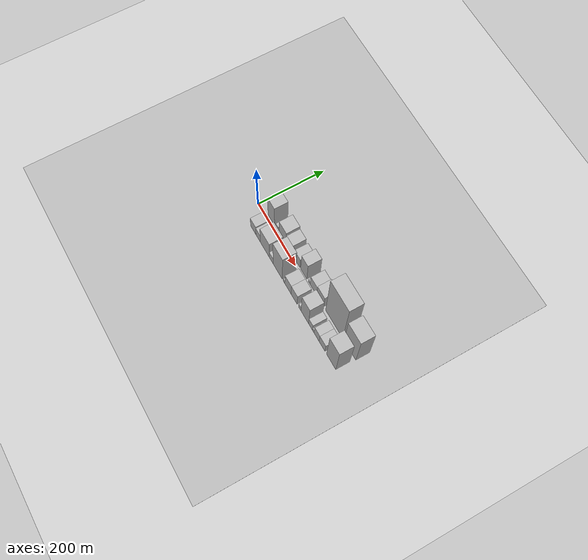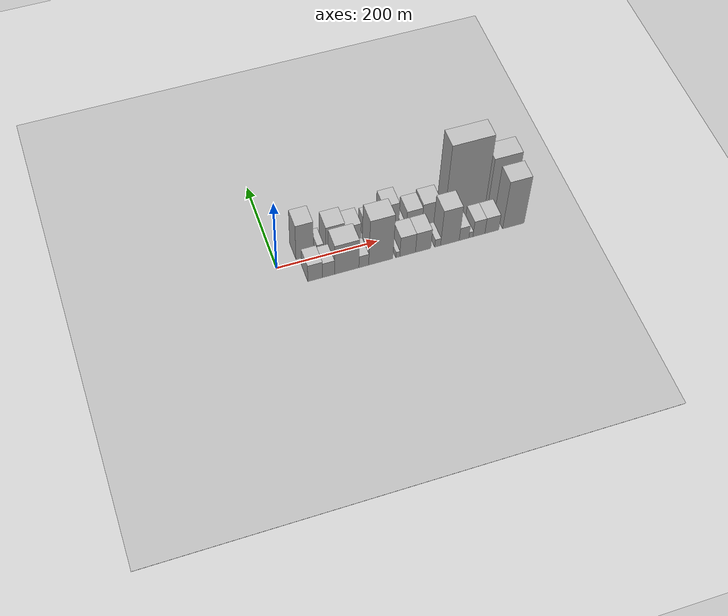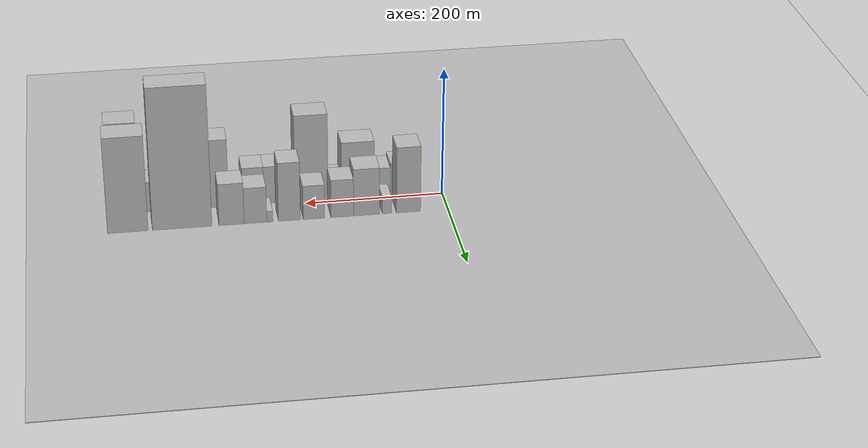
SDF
<?xml version="1.0" encoding="utf-8"?>

<sdf version="1.6">

   <world name="default">

      <gui fullscreen="0">

         <camera name="user_camera">

            <pose>-15 0 4.57585 0 0 0</pose>

            <view_controller>orbit</view_controller>

         </camera>

      </gui>

      <scene>

         <sky>

           <clouds>

             <speed>12</speed>

           </clouds>

         </sky>

         <ambient>0.4 0.4 0.4 1</ambient>

         <background>0.7 0.7 0.7 1</background>

         <shadows>1</shadows>

      </scene>

      <gravity>0 0 -9.8066</gravity>

      <magnetic_field>6e-06 2.3e-05 -4.2e-05</magnetic_field>

      <physics default="0" name="default_physics" type="ode">

         <ode>

            <solver>

               <type>quick</type>

               <iters>10</iters>

               <sor>1.0</sor>

               <use_dynamic_moi_rescaling>0</use_dynamic_moi_rescaling>

            </solver>

            <constraints>

               <cfm>0</cfm>

               <erp>0.2</erp>

               <contact_max_correcting_vel>100</contact_max_correcting_vel>

               <contact_surface_layer>0.001</contact_surface_layer>

            </constraints>

         </ode>

         <max_step_size>0.004</max_step_size>

         <real_time_factor>1</real_time_factor>

         <real_time_update_rate>250</real_time_update_rate>

      </physics>

      <light name="sun" type="directional">

         <cast_shadows>1</cast_shadows>

         <pose>0 0 10 0 0 0</pose>

         <diffuse>0.8 0.8 0.8 1</diffuse>

         <specular>0.2 0.2 0.2 1</specular>

         <attenuation>

            <range>1000</range>

            <constant>0.9</constant>

            <linear>0.01</linear>

            <quadratic>0.001</quadratic>

         </attenuation>

         <direction>-0.5 0.1 -0.9</direction>

      </light>

      <include>

         <name>ground_plane_1</name>

         <uri>model://HANNAS_ground_plane</uri>

         <pose>0 0 0  0 0 0</pose>

      </include>

      <include>

         <name>ground_plane_2</name>

         <uri>model://HANNAS_ground_plane</uri>

         <pose>100 0 0  0 0 0</pose>

      </include>

      <model name="building_1">

         <static>1</static>

         <pose frame="">57.4050 27.5000 0 0.000000 0.000000 1.570796</pose>

         <link name="link">

            <pose frame="">0 0 52.50 0 0 0</pose>

            <collision name="collision">

               <geometry>

                  <box>

                     <size>40.0000 34.8099 105.0000</size>

                  </box>

               </geometry>

               <max_contacts>10</max_contacts>

               <surface>

                  <contact>

                     <ode/>

                  </contact>

                  <bounce/>

                  <friction>

                     <torsional>

                        <ode/>

                     </torsional>

                     <ode/>

                  </friction>

               </surface>

            </collision>

            <visual name="visual">

               <cast_shadows>0</cast_shadows>

               <geometry>

                  <box>

                     <size>40.0000 34.8099 105.0000</size>

                  </box>

               </geometry>

               <material>

                  <script>

                     <uri>model://HANNAS_wall/materials/scripts</uri>

                     <uri>model://HANNAS_wall/materials/textures</uri>

                     <name>vrc/HANNAS_wall</name>

                  </script>

               </material>

            </visual>

            <self_collide>0</self_collide>

            <enable_wind>0</enable_wind>

            <kinematic>0</kinematic>

         </link>

      </model>

      <model name="building_2">

         <static>1</static>

         <pose frame="">88.4665 27.5000 0 0.000000 0.000000 1.570796</pose>

         <link name="link">

            <pose frame="">0 0 13.50 0 0 0</pose>

            <collision name="collision">

               <geometry>

                  <box>

                     <size>40.0000 13.3131 27.0000</size>

                  </box>

               </geometry>

               <max_contacts>10</max_contacts>

               <surface>

                  <contact>

                     <ode/>

                  </contact>

                  <bounce/>

                  <friction>

                     <torsional>

                        <ode/>

                     </torsional>

                     <ode/>

                  </friction>

               </surface>

            </collision>

            <visual name="visual">

               <cast_shadows>0</cast_shadows>

               <geometry>

                  <box>

                     <size>40.0000 13.3131 27.0000</size>

                  </box>

               </geometry>

               <material>

                  <script>

                     <uri>model://HANNAS_wall/materials/scripts</uri>

                     <uri>model://HANNAS_wall/materials/textures</uri>

                     <name>vrc/HANNAS_wall</name>

                  </script>

               </material>

            </visual>

            <self_collide>0</self_collide>

            <enable_wind>0</enable_wind>

            <kinematic>0</kinematic>

         </link>

      </model>

      <model name="building_3">

         <static>1</static>

         <pose frame="">118.0067 27.5000 0 0.000000 0.000000 1.570796</pose>

         <link name="link">

            <pose frame="">0 0 37.50 0 0 0</pose>

            <collision name="collision">

               <geometry>

                  <box>

                     <size>40.0000 37.7672 75.0000</size>

                  </box>

               </geometry>

               <max_contacts>10</max_contacts>

               <surface>

                  <contact>

                     <ode/>

                  </contact>

                  <bounce/>

                  <friction>

                     <torsional>

                        <ode/>

                     </torsional>

                     <ode/>

                  </friction>

               </surface>

            </collision>

            <visual name="visual">

               <cast_shadows>0</cast_shadows>

               <geometry>

                  <box>

                     <size>40.0000 37.7672 75.0000</size>

                  </box>

               </geometry>

               <material>

                  <script>

                     <uri>model://HANNAS_wall/materials/scripts</uri>

                     <uri>model://HANNAS_wall/materials/textures</uri>

                     <name>vrc/HANNAS_wall</name>

                  </script>

               </material>

            </visual>

            <self_collide>0</self_collide>

            <enable_wind>0</enable_wind>

            <kinematic>0</kinematic>

         </link>

      </model>

      <model name="building_4">

         <static>1</static>

         <pose frame="">153.1017 27.5000 0 0.000000 0.000000 1.570796</pose>

         <link name="link">

            <pose frame="">0 0 30.00 0 0 0</pose>

            <collision name="collision">

               <geometry>

                  <box>

                     <size>40.0000 32.4228 60.0000</size>

                  </box>

               </geometry>

               <max_contacts>10</max_contacts>

               <surface>

                  <contact>

                     <ode/>

                  </contact>

                  <bounce/>

                  <friction>

                     <torsional>

                        <ode/>

                     </torsional>

                     <ode/>

                  </friction>

               </surface>

            </collision>

            <visual name="visual">

               <cast_shadows>0</cast_shadows>

               <geometry>

                  <box>

                     <size>40.0000 32.4228 60.0000</size>

                  </box>

               </geometry>

               <material>

                  <script>

                     <uri>model://HANNAS_wall/materials/scripts</uri>

                     <uri>model://HANNAS_wall/materials/textures</uri>

                     <name>vrc/HANNAS_wall</name>

                  </script>

               </material>

            </visual>

            <self_collide>0</self_collide>

            <enable_wind>0</enable_wind>

            <kinematic>0</kinematic>

         </link>

      </model>

      <model name="building_5">

         <static>1</static>

         <pose frame="">193.7744 27.5000 0 0.000000 0.000000 1.570796</pose>

         <link name="link">

            <pose frame="">0 0 27.00 0 0 0</pose>

            <collision name="collision">

               <geometry>

                  <box>

                     <size>40.0000 30.9227 54.0000</size>

                  </box>

               </geometry>

               <max_contacts>10</max_contacts>

               <surface>

                  <contact>

                     <ode/>

                  </contact>

                  <bounce/>

                  <friction>

                     <torsional>

                        <ode/>

                     </torsional>

                     <ode/>

                  </friction>

               </surface>

            </collision>

            <visual name="visual">

               <cast_shadows>0</cast_shadows>

               <geometry>

                  <box>

                     <size>40.0000 30.9227 54.0000</size>

                  </box>

               </geometry>

               <material>

                  <script>

                     <uri>model://HANNAS_wall/materials/scripts</uri>

                     <uri>model://HANNAS_wall/materials/textures</uri>

                     <name>vrc/HANNAS_wall</name>

                  </script>

               </material>

            </visual>

            <self_collide>0</self_collide>

            <enable_wind>0</enable_wind>

            <kinematic>0</kinematic>

         </link>

      </model>

      <model name="building_6">

         <static>1</static>

         <pose frame="">228.9866 27.5000 0 0.000000 0.000000 1.570796</pose>

         <link name="link">

            <pose frame="">0 0 46.50 0 0 0</pose>

            <collision name="collision">

               <geometry>

                  <box>

                     <size>40.0000 31.5016 93.0000</size>

                  </box>

               </geometry>

               <max_contacts>10</max_contacts>

               <surface>

                  <contact>

                     <ode/>

                  </contact>

                  <bounce/>

                  <friction>

                     <torsional>

                        <ode/>

                     </torsional>

                     <ode/>

                  </friction>

               </surface>

            </collision>

            <visual name="visual">

               <cast_shadows>0</cast_shadows>

               <geometry>

                  <box>

                     <size>40.0000 31.5016 93.0000</size>

                  </box>

               </geometry>

               <material>

                  <script>

                     <uri>model://HANNAS_wall/materials/scripts</uri>

                     <uri>model://HANNAS_wall/materials/textures</uri>

                     <name>vrc/HANNAS_wall</name>

                  </script>

               </material>

            </visual>

            <self_collide>0</self_collide>

            <enable_wind>0</enable_wind>

            <kinematic>0</kinematic>

         </link>

      </model>

      <model name="building_7">

         <static>1</static>

         <pose frame="">257.1111 27.5000 0 0.000000 0.000000 1.570796</pose>

         <link name="link">

            <pose frame="">0 0 9.00 0 0 0</pose>

            <collision name="collision">

               <geometry>

                  <box>

                     <size>40.0000 8.7476 18.0000</size>

                  </box>

               </geometry>

               <max_contacts>10</max_contacts>

               <surface>

                  <contact>

                     <ode/>

                  </contact>

                  <bounce/>

                  <friction>

                     <torsional>

                        <ode/>

                     </torsional>

                     <ode/>

                  </friction>

               </surface>

            </collision>

            <visual name="visual">

               <cast_shadows>0</cast_shadows>

               <geometry>

                  <box>

                     <size>40.0000 8.7476 18.0000</size>

                  </box>

               </geometry>

               <material>

                  <script>

                     <uri>model://HANNAS_wall/materials/scripts</uri>

                     <uri>model://HANNAS_wall/materials/textures</uri>

                     <name>vrc/HANNAS_wall</name>

                  </script>

               </material>

            </visual>

            <self_collide>0</self_collide>

            <enable_wind>0</enable_wind>

            <kinematic>0</kinematic>

         </link>

      </model>

      <model name="building_8">

         <static>1</static>

         <pose frame="">277.5627 27.5000 0 0.000000 0.000000 1.570796</pose>

         <link name="link">

            <pose frame="">0 0 28.50 0 0 0</pose>

            <collision name="collision">

               <geometry>

                  <box>

                     <size>40.0000 32.1554 57.0000</size>

                  </box>

               </geometry>

               <max_contacts>10</max_contacts>

               <surface>

                  <contact>

                     <ode/>

                  </contact>

                  <bounce/>

                  <friction>

                     <torsional>

                        <ode/>

                     </torsional>

                     <ode/>

                  </friction>

               </surface>

            </collision>

            <visual name="visual">

               <cast_shadows>0</cast_shadows>

               <geometry>

                  <box>

                     <size>40.0000 32.1554 57.0000</size>

                  </box>

               </geometry>

               <material>

                  <script>

                     <uri>model://HANNAS_wall/materials/scripts</uri>

                     <uri>model://HANNAS_wall/materials/textures</uri>

                     <name>vrc/HANNAS_wall</name>

                  </script>

               </material>

            </visual>

            <self_collide>0</self_collide>

            <enable_wind>0</enable_wind>

            <kinematic>0</kinematic>

         </link>

      </model>

      <model name="building_9">

         <static>1</static>

         <pose frame="">311.5244 27.5000 0 0.000000 0.000000 1.570796</pose>

         <link name="link">

            <pose frame="">0 0 33.00 0 0 0</pose>

            <collision name="collision">

               <geometry>

                  <box>

                     <size>40.0000 35.7680 66.0000</size>

                  </box>

               </geometry>

               <max_contacts>10</max_contacts>

               <surface>

                  <contact>

                     <ode/>

                  </contact>

                  <bounce/>

                  <friction>

                     <torsional>

                        <ode/>

                     </torsional>

                     <ode/>

                  </friction>

               </surface>

            </collision>

            <visual name="visual">

               <cast_shadows>0</cast_shadows>

               <geometry>

                  <box>

                     <size>40.0000 35.7680 66.0000</size>

                  </box>

               </geometry>

               <material>

                  <script>

                     <uri>model://HANNAS_wall/materials/scripts</uri>

                     <uri>model://HANNAS_wall/materials/textures</uri>

                     <name>vrc/HANNAS_wall</name>

                  </script>

               </material>

            </visual>

            <self_collide>0</self_collide>

            <enable_wind>0</enable_wind>

            <kinematic>0</kinematic>

         </link>

      </model>

      <model name="building_10">

         <static>1</static>

         <pose frame="">381.4530 27.5000 0 0.000000 0.000000 1.570796</pose>

         <link name="link">

            <pose frame="">0 0 111.00 0 0 0</pose>

            <collision name="collision">

               <geometry>

                  <box>

                     <size>40.0000 84.0892 222.0000</size>

                  </box>

               </geometry>

               <max_contacts>10</max_contacts>

               <surface>

                  <contact>

                     <ode/>

                  </contact>

                  <bounce/>

                  <friction>

                     <torsional>

                        <ode/>

                     </torsional>

                     <ode/>

                  </friction>

               </surface>

            </collision>

            <visual name="visual">

               <cast_shadows>0</cast_shadows>

               <geometry>

                  <box>

                     <size>40.0000 84.0892 222.0000</size>

                  </box>

               </geometry>

               <material>

                  <script>

                     <uri>model://HANNAS_wall/materials/scripts</uri>

                     <uri>model://HANNAS_wall/materials/textures</uri>

                     <name>vrc/HANNAS_wall</name>

                  </script>

               </material>

            </visual>

            <self_collide>0</self_collide>

            <enable_wind>0</enable_wind>

            <kinematic>0</kinematic>

         </link>

      </model>

      <model name="building_11">

         <static>1</static>

         <pose frame="">457.9591 27.5000 0 0.000000 0.000000 1.570796</pose>

         <link name="link">

            <pose frame="">0 0 75.00 0 0 0</pose>

            <collision name="collision">

               <geometry>

                  <box>

                     <size>40.0000 56.9230 150.0000</size>

                  </box>

               </geometry>

               <max_contacts>10</max_contacts>

               <surface>

                  <contact>

                     <ode/>

                  </contact>

                  <bounce/>

                  <friction>

                     <torsional>

                        <ode/>

                     </torsional>

                     <ode/>

                  </friction>

               </surface>

            </collision>

            <visual name="visual">

               <cast_shadows>0</cast_shadows>

               <geometry>

                  <box>

                     <size>40.0000 56.9230 150.0000</size>

                  </box>

               </geometry>

               <material>

                  <script>

                     <uri>model://HANNAS_wall/materials/scripts</uri>

                     <uri>model://HANNAS_wall/materials/textures</uri>

                     <name>vrc/HANNAS_wall</name>

                  </script>

               </material>

            </visual>

            <self_collide>0</self_collide>

            <enable_wind>0</enable_wind>

            <kinematic>0</kinematic>

         </link>

      </model>

      <model name="building_12">

         <static>1</static>

         <pose frame="">60.5892 -27.5000 0 0.000000 0.000000 1.570796</pose>

         <link name="link">

            <pose frame="">0 0 25.50 0 0 0</pose>

            <collision name="collision">

               <geometry>

                  <box>

                     <size>40.0000 29.1784 51.0000</size>

                  </box>

               </geometry>

               <max_contacts>10</max_contacts>

               <surface>

                  <contact>

                     <ode/>

                  </contact>

                  <bounce/>

                  <friction>

                     <torsional>

                        <ode/>

                     </torsional>

                     <ode/>

                  </friction>

               </surface>

            </collision>

            <visual name="visual">

               <cast_shadows>0</cast_shadows>

               <geometry>

                  <box>

                     <size>40.0000 29.1784 51.0000</size>

                  </box>

               </geometry>

               <material>

                  <script>

                     <uri>model://HANNAS_wall/materials/scripts</uri>

                     <uri>model://HANNAS_wall/materials/textures</uri>

                     <name>vrc/HANNAS_wall</name>

                  </script>

               </material>

            </visual>

            <self_collide>0</self_collide>

            <enable_wind>0</enable_wind>

            <kinematic>0</kinematic>

         </link>

      </model>

      <model name="building_13">

         <static>1</static>

         <pose frame="">86.9274 -27.5000 0 0.000000 0.000000 1.570796</pose>

         <link name="link">

            <pose frame="">0 0 22.50 0 0 0</pose>

            <collision name="collision">

               <geometry>

                  <box>

                     <size>40.0000 23.4980 45.0000</size>

                  </box>

               </geometry>

               <max_contacts>10</max_contacts>

               <surface>

                  <contact>

                     <ode/>

                  </contact>

                  <bounce/>

                  <friction>

                     <torsional>

                        <ode/>

                     </torsional>

                     <ode/>

                  </friction>

               </surface>

            </collision>

            <visual name="visual">

               <cast_shadows>0</cast_shadows>

               <geometry>

                  <box>

                     <size>40.0000 23.4980 45.0000</size>

                  </box>

               </geometry>

               <material>

                  <script>

                     <uri>model://HANNAS_wall/materials/scripts</uri>

                     <uri>model://HANNAS_wall/materials/textures</uri>

                     <name>vrc/HANNAS_wall</name>

                  </script>

               </material>

            </visual>

            <self_collide>0</self_collide>

            <enable_wind>0</enable_wind>

            <kinematic>0</kinematic>

         </link>

      </model>

      <model name="building_14">

         <static>1</static>

         <pose frame="">122.7340 -27.5000 0 0.000000 0.000000 1.570796</pose>

         <link name="link">

            <pose frame="">0 0 45.00 0 0 0</pose>

            <collision name="collision">

               <geometry>

                  <box>

                     <size>40.0000 48.1151 90.0000</size>

                  </box>

               </geometry>

               <max_contacts>10</max_contacts>

               <surface>

                  <contact>

                     <ode/>

                  </contact>

                  <bounce/>

                  <friction>

                     <torsional>

                        <ode/>

                     </torsional>

                     <ode/>

                  </friction>

               </surface>

            </collision>

            <visual name="visual">

               <cast_shadows>0</cast_shadows>

               <geometry>

                  <box>

                     <size>40.0000 48.1151 90.0000</size>

                  </box>

               </geometry>

               <material>

                  <script>

                     <uri>model://HANNAS_wall/materials/scripts</uri>

                     <uri>model://HANNAS_wall/materials/textures</uri>

                     <name>vrc/HANNAS_wall</name>

                  </script>

               </material>

            </visual>

            <self_collide>0</self_collide>

            <enable_wind>0</enable_wind>

            <kinematic>0</kinematic>

         </link>

      </model>

      <model name="building_15">

         <static>1</static>

         <pose frame="">156.5684 -27.5000 0 0.000000 0.000000 1.570796</pose>

         <link name="link">

            <pose frame="">0 0 18.00 0 0 0</pose>

            <collision name="collision">

               <geometry>

                  <box>

                     <size>40.0000 19.5539 36.0000</size>

                  </box>

               </geometry>

               <max_contacts>10</max_contacts>

               <surface>

                  <contact>

                     <ode/>

                  </contact>

                  <bounce/>

                  <friction>

                     <torsional>

                        <ode/>

                     </torsional>

                     <ode/>

                  </friction>

               </surface>

            </collision>

            <visual name="visual">

               <cast_shadows>0</cast_shadows>

               <geometry>

                  <box>

                     <size>40.0000 19.5539 36.0000</size>

                  </box>

               </geometry>

               <material>

                  <script>

                     <uri>model://HANNAS_wall/materials/scripts</uri>

                     <uri>model://HANNAS_wall/materials/textures</uri>

                     <name>vrc/HANNAS_wall</name>

                  </script>

               </material>

            </visual>

            <self_collide>0</self_collide>

            <enable_wind>0</enable_wind>

            <kinematic>0</kinematic>

         </link>

      </model>

      <model name="building_16">

         <static>1</static>

         <pose frame="">190.4565 -27.5000 0 0.000000 0.000000 1.570796</pose>

         <link name="link">

            <pose frame="">0 0 69.00 0 0 0</pose>

            <collision name="collision">

               <geometry>

                  <box>

                     <size>40.0000 48.2222 138.0000</size>

                  </box>

               </geometry>

               <max_contacts>10</max_contacts>

               <surface>

                  <contact>

                     <ode/>

                  </contact>

                  <bounce/>

                  <friction>

                     <torsional>

                        <ode/>

                     </torsional>

                     <ode/>

                  </friction>

               </surface>

            </collision>

            <visual name="visual">

               <cast_shadows>0</cast_shadows>

               <geometry>

                  <box>

                     <size>40.0000 48.2222 138.0000</size>

                  </box>

               </geometry>

               <material>

                  <script>

                     <uri>model://HANNAS_wall/materials/scripts</uri>

                     <uri>model://HANNAS_wall/materials/textures</uri>

                     <name>vrc/HANNAS_wall</name>

                  </script>

               </material>

            </visual>

            <self_collide>0</self_collide>

            <enable_wind>0</enable_wind>

            <kinematic>0</kinematic>

         </link>

      </model>

      <model name="building_17">

         <static>1</static>

         <pose frame="">224.4831 -27.5000 0 0.000000 0.000000 1.570796</pose>

         <link name="link">

            <pose frame="">0 0 9.00 0 0 0</pose>

            <collision name="collision">

               <geometry>

                  <box>

                     <size>40.0000 7.8309 18.0000</size>

                  </box>

               </geometry>

               <max_contacts>10</max_contacts>

               <surface>

                  <contact>

                     <ode/>

                  </contact>

                  <bounce/>

                  <friction>

                     <torsional>

                        <ode/>

                     </torsional>

                     <ode/>

                  </friction>

               </surface>

            </collision>

            <visual name="visual">

               <cast_shadows>0</cast_shadows>

               <geometry>

                  <box>

                     <size>40.0000 7.8309 18.0000</size>

                  </box>

               </geometry>

               <material>

                  <script>

                     <uri>model://HANNAS_wall/materials/scripts</uri>

                     <uri>model://HANNAS_wall/materials/textures</uri>

                     <name>vrc/HANNAS_wall</name>

                  </script>

               </material>

            </visual>

            <self_collide>0</self_collide>

            <enable_wind>0</enable_wind>

            <kinematic>0</kinematic>

         </link>

      </model>

      <model name="building_18">

         <static>1</static>

         <pose frame="">244.2484 -27.5000 0 0.000000 0.000000 1.570796</pose>

         <link name="link">

            <pose frame="">0 0 30.00 0 0 0</pose>

            <collision name="collision">

               <geometry>

                  <box>

                     <size>40.0000 31.6999 60.0000</size>

                  </box>

               </geometry>

               <max_contacts>10</max_contacts>

               <surface>

                  <contact>

                     <ode/>

                  </contact>

                  <bounce/>

                  <friction>

                     <torsional>

                        <ode/>

                     </torsional>

                     <ode/>

                  </friction>

               </surface>

            </collision>

            <visual name="visual">

               <cast_shadows>0</cast_shadows>

               <geometry>

                  <box>

                     <size>40.0000 31.6999 60.0000</size>

                  </box>

               </geometry>

               <material>

                  <script>

                     <uri>model://HANNAS_wall/materials/scripts</uri>

                     <uri>model://HANNAS_wall/materials/textures</uri>

                     <name>vrc/HANNAS_wall</name>

                  </script>

               </material>

            </visual>

            <self_collide>0</self_collide>

            <enable_wind>0</enable_wind>

            <kinematic>0</kinematic>

         </link>

      </model>

      <model name="building_19">

         <static>1</static>

         <pose frame="">275.6434 -27.5000 0 0.000000 0.000000 1.570796</pose>

         <link name="link">

            <pose frame="">0 0 30.00 0 0 0</pose>

            <collision name="collision">

               <geometry>

                  <box>

                     <size>40.0000 31.0900 60.0000</size>

                  </box>

               </geometry>

               <max_contacts>10</max_contacts>

               <surface>

                  <contact>

                     <ode/>

                  </contact>

                  <bounce/>

                  <friction>

                     <torsional>

                        <ode/>

                     </torsional>

                     <ode/>

                  </friction>

               </surface>

            </collision>

            <visual name="visual">

               <cast_shadows>0</cast_shadows>

               <geometry>

                  <box>

                     <size>40.0000 31.0900 60.0000</size>

                  </box>

               </geometry>

               <material>

                  <script>

                     <uri>model://HANNAS_wall/materials/scripts</uri>

                     <uri>model://HANNAS_wall/materials/textures</uri>

                     <name>vrc/HANNAS_wall</name>

                  </script>

               </material>

            </visual>

            <self_collide>0</self_collide>

            <enable_wind>0</enable_wind>

            <kinematic>0</kinematic>

         </link>

      </model>

      <model name="building_20">

         <static>1</static>

         <pose frame="">305.0550 -27.5000 0 0.000000 0.000000 1.570796</pose>

         <link name="link">

            <pose frame="">0 0 12.00 0 0 0</pose>

            <collision name="collision">

               <geometry>

                  <box>

                     <size>40.0000 11.7334 24.0000</size>

                  </box>

               </geometry>

               <max_contacts>10</max_contacts>

               <surface>

                  <contact>

                     <ode/>

                  </contact>

                  <bounce/>

                  <friction>

                     <torsional>

                        <ode/>

                     </torsional>

                     <ode/>

                  </friction>

               </surface>

            </collision>

            <visual name="visual">

               <cast_shadows>0</cast_shadows>

               <geometry>

                  <box>

                     <size>40.0000 11.7334 24.0000</size>

                  </box>

               </geometry>

               <material>

                  <script>

                     <uri>model://HANNAS_wall/materials/scripts</uri>

                     <uri>model://HANNAS_wall/materials/textures</uri>

                     <name>vrc/HANNAS_wall</name>

                  </script>

               </material>

            </visual>

            <self_collide>0</self_collide>

            <enable_wind>0</enable_wind>

            <kinematic>0</kinematic>

         </link>

      </model>

      <model name="building_21">

         <static>1</static>

         <pose frame="">329.9387 -27.5000 0 0.000000 0.000000 1.570796</pose>

         <link name="link">

            <pose frame="">0 0 54.00 0 0 0</pose>

            <collision name="collision">

               <geometry>

                  <box>

                     <size>40.0000 38.0341 108.0000</size>

                  </box>

               </geometry>

               <max_contacts>10</max_contacts>

               <surface>

                  <contact>

                     <ode/>

                  </contact>

                  <bounce/>

                  <friction>

                     <torsional>

                        <ode/>

                     </torsional>

                     <ode/>

                  </friction>

               </surface>

            </collision>

            <visual name="visual">

               <cast_shadows>0</cast_shadows>

               <geometry>

                  <box>

                     <size>40.0000 38.0341 108.0000</size>

                  </box>

               </geometry>

               <material>

                  <script>

                     <uri>model://HANNAS_wall/materials/scripts</uri>

                     <uri>model://HANNAS_wall/materials/textures</uri>

                     <name>vrc/HANNAS_wall</name>

                  </script>

               </material>

            </visual>

            <self_collide>0</self_collide>

            <enable_wind>0</enable_wind>

            <kinematic>0</kinematic>

         </link>

      </model>

      <model name="building_22">

         <static>1</static>

         <pose frame="">358.8997 -27.5000 0 0.000000 0.000000 1.570796</pose>

         <link name="link">

            <pose frame="">0 0 19.50 0 0 0</pose>

            <collision name="collision">

               <geometry>

                  <box>

                     <size>40.0000 19.8879 39.0000</size>

                  </box>

               </geometry>

               <max_contacts>10</max_contacts>

               <surface>

                  <contact>

                     <ode/>

                  </contact>

                  <bounce/>

                  <friction>

                     <torsional>

                        <ode/>

                     </torsional>

                     <ode/>

                  </friction>

               </surface>

            </collision>

            <visual name="visual">

               <cast_shadows>0</cast_shadows>

               <geometry>

                  <box>

                     <size>40.0000 19.8879 39.0000</size>

                  </box>

               </geometry>

               <material>

                  <script>

                     <uri>model://HANNAS_wall/materials/scripts</uri>

                     <uri>model://HANNAS_wall/materials/textures</uri>

                     <name>vrc/HANNAS_wall</name>

                  </script>

               </material>

            </visual>

            <self_collide>0</self_collide>

            <enable_wind>0</enable_wind>

            <kinematic>0</kinematic>

         </link>

      </model>

      <model name="building_23">

         <static>1</static>

         <pose frame="">372.9472 -27.5000 0 0.000000 0.000000 1.570796</pose>

         <link name="link">

            <pose frame="">0 0 9.00 0 0 0</pose>

            <collision name="collision">

               <geometry>

                  <box>

                     <size>40.0000 8.2070 18.0000</size>

                  </box>

               </geometry>

               <max_contacts>10</max_contacts>

               <surface>

                  <contact>

                     <ode/>

                  </contact>

                  <bounce/>

                  <friction>

                     <torsional>

                        <ode/>

                     </torsional>

                     <ode/>

                  </friction>

               </surface>

            </collision>

            <visual name="visual">

               <cast_shadows>0</cast_shadows>

               <geometry>

                  <box>

                     <size>40.0000 8.2070 18.0000</size>

                  </box>

               </geometry>

               <material>

                  <script>

                     <uri>model://HANNAS_wall/materials/scripts</uri>

                     <uri>model://HANNAS_wall/materials/textures</uri>

                     <name>vrc/HANNAS_wall</name>

                  </script>

               </material>

            </visual>

            <self_collide>0</self_collide>

            <enable_wind>0</enable_wind>

            <kinematic>0</kinematic>

         </link>

      </model>

      <model name="building_24">

         <static>1</static>

         <pose frame="">389.3609 -27.5000 0 0.000000 0.000000 1.570796</pose>

         <link name="link">

            <pose frame="">0 0 24.00 0 0 0</pose>

            <collision name="collision">

               <geometry>

                  <box>

                     <size>40.0000 24.6206 48.0000</size>

                  </box>

               </geometry>

               <max_contacts>10</max_contacts>

               <surface>

                  <contact>

                     <ode/>

                  </contact>

                  <bounce/>

                  <friction>

                     <torsional>

                        <ode/>

                     </torsional>

                     <ode/>

                  </friction>

               </surface>

            </collision>

            <visual name="visual">

               <cast_shadows>0</cast_shadows>

               <geometry>

                  <box>

                     <size>40.0000 24.6206 48.0000</size>

                  </box>

               </geometry>

               <material>

                  <script>

                     <uri>model://HANNAS_wall/materials/scripts</uri>

                     <uri>model://HANNAS_wall/materials/textures</uri>

                     <name>vrc/HANNAS_wall</name>

                  </script>

               </material>

            </visual>

            <self_collide>0</self_collide>

            <enable_wind>0</enable_wind>

            <kinematic>0</kinematic>

         </link>

      </model>

      <model name="building_25">

         <static>1</static>

         <pose frame="">415.9757 -27.5000 0 0.000000 0.000000 1.570796</pose>

         <link name="link">

            <pose frame="">0 0 24.00 0 0 0</pose>

            <collision name="collision">

               <geometry>

                  <box>

                     <size>40.0000 28.6090 48.0000</size>

                  </box>

               </geometry>

               <max_contacts>10</max_contacts>

               <surface>

                  <contact>

                     <ode/>

                  </contact>

                  <bounce/>

                  <friction>

                     <torsional>

                        <ode/>

                     </torsional>

                     <ode/>

                  </friction>

               </surface>

            </collision>

            <visual name="visual">

               <cast_shadows>0</cast_shadows>

               <geometry>

                  <box>

                     <size>40.0000 28.6090 48.0000</size>

                  </box>

               </geometry>

               <material>

                  <script>

                     <uri>model://HANNAS_wall/materials/scripts</uri>

                     <uri>model://HANNAS_wall/materials/textures</uri>

                     <name>vrc/HANNAS_wall</name>

                  </script>

               </material>

            </visual>

            <self_collide>0</self_collide>

            <enable_wind>0</enable_wind>

            <kinematic>0</kinematic>

         </link>

      </model>

      <model name="building_26">

         <static>1</static>

         <pose frame="">460.5625 -27.5000 0 0.000000 0.000000 1.570796</pose>

         <link name="link">

            <pose frame="">0 0 72.00 0 0 0</pose>

            <collision name="collision">

               <geometry>

                  <box>

                     <size>40.0000 44.5646 144.0000</size>

                  </box>

               </geometry>

               <max_contacts>10</max_contacts>

               <surface>

                  <contact>

                     <ode/>

                  </contact>

                  <bounce/>

                  <friction>

                     <torsional>

                        <ode/>

                     </torsional>

                     <ode/>

                  </friction>

               </surface>

            </collision>

            <visual name="visual">

               <cast_shadows>0</cast_shadows>

               <geometry>

                  <box>

                     <size>40.0000 44.5646 144.0000</size>

                  </box>

               </geometry>

               <material>

                  <script>

                     <uri>model://HANNAS_wall/materials/scripts</uri>

                     <uri>model://HANNAS_wall/materials/textures</uri>

                     <name>vrc/HANNAS_wall</name>

                  </script>

               </material>

            </visual>

            <self_collide>0</self_collide>

            <enable_wind>0</enable_wind>

            <kinematic>0</kinematic>

         </link>

      </model>

   </world>

</sdf>

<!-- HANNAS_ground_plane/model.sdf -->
<sdf version="1.4">
<model name="HANNAS_ground_plane">
  <static>true</static>
    <link name="link">
      <collision name="collision">
        <geometry>
          <plane>
            <normal>0 0 1</normal>
            <size>1000 1000</size>
          </plane>
        </geometry>
        <surface>
          <friction>
            <ode>
              <mu>100</mu>
              <mu2>50</mu2>
            </ode>
          </friction>
        </surface>
      </collision>
      <visual name="visual">
        <cast_shadows>false</cast_shadows>
        <geometry>
          <plane>
            <normal>0 0 1</normal>
            <size>1000 1000</size>
          </plane>
        </geometry>
        <material>
          <script>
            <uri>model://HANNAS_ground_plane/materials/scripts/HANNAS_ground_plane.material</uri>
	    <uri>model://HANNAS_ground_plane/materials/textures</uri>
            <name>HANNASGroundPlane/Image</name>
          </script>
        </material>
      </visual>
    </link>
  </model>
</sdf>
